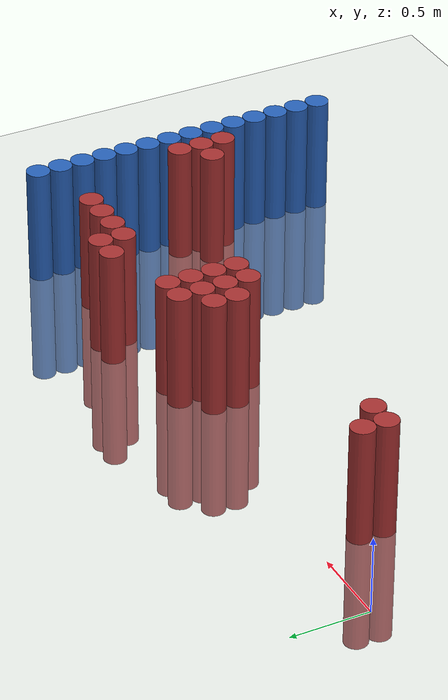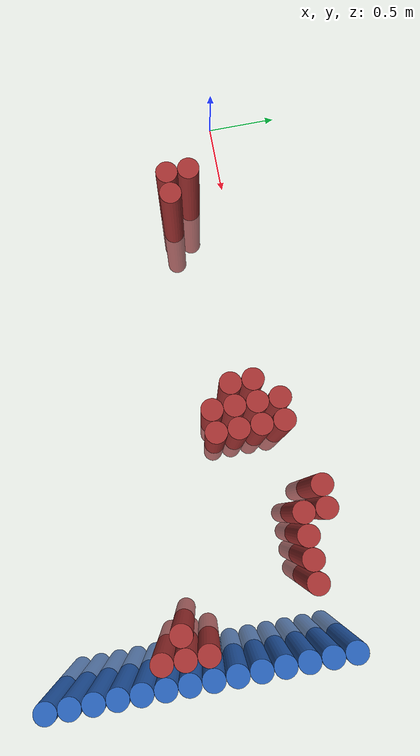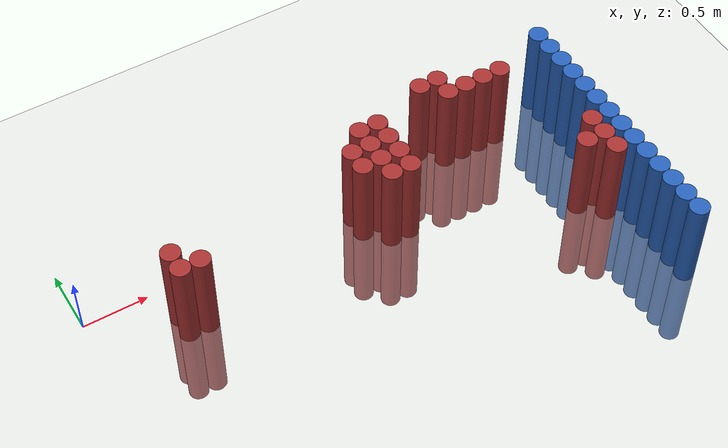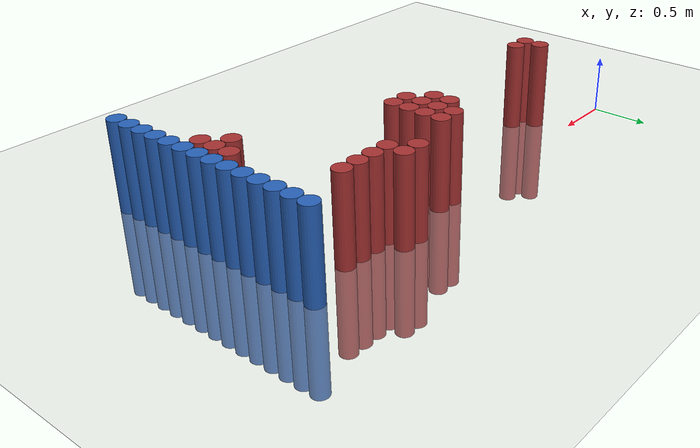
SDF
<sdf version="1.6">
 <world name="default">
  <model name="ground_plane">
   <static>1</static>
   <link name="link">
    <collision name="collision">
     <geometry><plane><normal>0 0 1</normal><size>100 100</size></plane></geometry>
     <surface><friction><ode><mu>100</mu><mu2>50</mu2></ode></friction></surface>
    </collision>
    <visual name="visual">
     <cast_shadows>0</cast_shadows>
     <geometry><plane><normal>0 0 1</normal><size>100 100</size></plane></geometry>
     <material>
      <script><uri>file://media/materials/scripts/gazebo.material</uri><name>Gazebo/Grey</name></script>
     </material>
    </visual>
   </link>
  </model>
  <model name="unit_cylinder_90">
   <static>1</static>
   <pose>3.925000 -1.775000 0.000000 0.000000 0.000000 0.000000</pose>
   <link name="link">
    <inertial>
     <mass>1</mass>
     <inertia><ixx>0.145833</ixx><ixy>0</ixy><ixz>0</ixz><iyy>0.145833</iyy><iyz>0</iyz><izz>0.125</izz></inertia>
    </inertial>
    <collision name="collision">
     <geometry><cylinder><radius>0.075000</radius><length>1.5</length></cylinder></geometry>
    </collision>
    <visual name="visual">
     <geometry><cylinder><radius>0.075000</radius><length>1.5</length></cylinder></geometry>
     <material>
      <ambient>0.152000 0.379000 0.720000 1</ambient>
      <diffuse>0.152000 0.379000 0.720000 1</diffuse>
     </material>
     <material>
      <script><name>Gazebo/Grey</name><uri>file://media/materials/scripts/gazebo.material</uri></script>
     </material>
    </visual>
   </link>
  </model>
  <model name="unit_cylinder_92">
   <static>1</static>
   <pose>3.925000 -1.625000 0.000000 0.000000 0.000000 0.000000</pose>
   <link name="link">
    <inertial>
     <mass>1</mass>
     <inertia><ixx>0.145833</ixx><ixy>0</ixy><ixz>0</ixz><iyy>0.145833</iyy><iyz>0</iyz><izz>0.125</izz></inertia>
    </inertial>
    <collision name="collision">
     <geometry><cylinder><radius>0.075000</radius><length>1.5</length></cylinder></geometry>
    </collision>
    <visual name="visual">
     <geometry><cylinder><radius>0.075000</radius><length>1.5</length></cylinder></geometry>
     <material>
      <ambient>0.152000 0.379000 0.720000 1</ambient>
      <diffuse>0.152000 0.379000 0.720000 1</diffuse>
     </material>
     <material>
      <script><name>Gazebo/Grey</name><uri>file://media/materials/scripts/gazebo.material</uri></script>
     </material>
    </visual>
   </link>
  </model>
  <model name="unit_cylinder_94">
   <static>1</static>
   <pose>3.925000 -1.475000 0.000000 0.000000 0.000000 0.000000</pose>
   <link name="link">
    <inertial>
     <mass>1</mass>
     <inertia><ixx>0.145833</ixx><ixy>0</ixy><ixz>0</ixz><iyy>0.145833</iyy><iyz>0</iyz><izz>0.125</izz></inertia>
    </inertial>
    <collision name="collision">
     <geometry><cylinder><radius>0.075000</radius><length>1.5</length></cylinder></geometry>
    </collision>
    <visual name="visual">
     <geometry><cylinder><radius>0.075000</radius><length>1.5</length></cylinder></geometry>
     <material>
      <ambient>0.152000 0.379000 0.720000 1</ambient>
      <diffuse>0.152000 0.379000 0.720000 1</diffuse>
     </material>
     <material>
      <script><name>Gazebo/Grey</name><uri>file://media/materials/scripts/gazebo.material</uri></script>
     </material>
    </visual>
   </link>
  </model>
  <model name="unit_cylinder_96">
   <static>1</static>
   <pose>3.925000 -1.325000 0.000000 0.000000 0.000000 0.000000</pose>
   <link name="link">
    <inertial>
     <mass>1</mass>
     <inertia><ixx>0.145833</ixx><ixy>0</ixy><ixz>0</ixz><iyy>0.145833</iyy><iyz>0</iyz><izz>0.125</izz></inertia>
    </inertial>
    <collision name="collision">
     <geometry><cylinder><radius>0.075000</radius><length>1.5</length></cylinder></geometry>
    </collision>
    <visual name="visual">
     <geometry><cylinder><radius>0.075000</radius><length>1.5</length></cylinder></geometry>
     <material>
      <ambient>0.152000 0.379000 0.720000 1</ambient>
      <diffuse>0.152000 0.379000 0.720000 1</diffuse>
     </material>
     <material>
      <script><name>Gazebo/Grey</name><uri>file://media/materials/scripts/gazebo.material</uri></script>
     </material>
    </visual>
   </link>
  </model>
  <model name="unit_cylinder_98">
   <static>1</static>
   <pose>3.925000 -1.175000 0.000000 0.000000 0.000000 0.000000</pose>
   <link name="link">
    <inertial>
     <mass>1</mass>
     <inertia><ixx>0.145833</ixx><ixy>0</ixy><ixz>0</ixz><iyy>0.145833</iyy><iyz>0</iyz><izz>0.125</izz></inertia>
    </inertial>
    <collision name="collision">
     <geometry><cylinder><radius>0.075000</radius><length>1.5</length></cylinder></geometry>
    </collision>
    <visual name="visual">
     <geometry><cylinder><radius>0.075000</radius><length>1.5</length></cylinder></geometry>
     <material>
      <ambient>0.152000 0.379000 0.720000 1</ambient>
      <diffuse>0.152000 0.379000 0.720000 1</diffuse>
     </material>
     <material>
      <script><name>Gazebo/Grey</name><uri>file://media/materials/scripts/gazebo.material</uri></script>
     </material>
    </visual>
   </link>
  </model>
  <model name="unit_cylinder_100">
   <static>1</static>
   <pose>3.925000 -1.025000 0.000000 0.000000 0.000000 0.000000</pose>
   <link name="link">
    <inertial>
     <mass>1</mass>
     <inertia><ixx>0.145833</ixx><ixy>0</ixy><ixz>0</ixz><iyy>0.145833</iyy><iyz>0</iyz><izz>0.125</izz></inertia>
    </inertial>
    <collision name="collision">
     <geometry><cylinder><radius>0.075000</radius><length>1.5</length></cylinder></geometry>
    </collision>
    <visual name="visual">
     <geometry><cylinder><radius>0.075000</radius><length>1.5</length></cylinder></geometry>
     <material>
      <ambient>0.152000 0.379000 0.720000 1</ambient>
      <diffuse>0.152000 0.379000 0.720000 1</diffuse>
     </material>
     <material>
      <script><name>Gazebo/Grey</name><uri>file://media/materials/scripts/gazebo.material</uri></script>
     </material>
    </visual>
   </link>
  </model>
  <model name="unit_cylinder_102">
   <static>1</static>
   <pose>3.925000 -0.875000 0.000000 0.000000 0.000000 0.000000</pose>
   <link name="link">
    <inertial>
     <mass>1</mass>
     <inertia><ixx>0.145833</ixx><ixy>0</ixy><ixz>0</ixz><iyy>0.145833</iyy><iyz>0</iyz><izz>0.125</izz></inertia>
    </inertial>
    <collision name="collision">
     <geometry><cylinder><radius>0.075000</radius><length>1.5</length></cylinder></geometry>
    </collision>
    <visual name="visual">
     <geometry><cylinder><radius>0.075000</radius><length>1.5</length></cylinder></geometry>
     <material>
      <ambient>0.152000 0.379000 0.720000 1</ambient>
      <diffuse>0.152000 0.379000 0.720000 1</diffuse>
     </material>
     <material>
      <script><name>Gazebo/Grey</name><uri>file://media/materials/scripts/gazebo.material</uri></script>
     </material>
    </visual>
   </link>
  </model>
  <model name="unit_cylinder_104">
   <static>1</static>
   <pose>3.925000 -0.725000 0.000000 0.000000 0.000000 0.000000</pose>
   <link name="link">
    <inertial>
     <mass>1</mass>
     <inertia><ixx>0.145833</ixx><ixy>0</ixy><ixz>0</ixz><iyy>0.145833</iyy><iyz>0</iyz><izz>0.125</izz></inertia>
    </inertial>
    <collision name="collision">
     <geometry><cylinder><radius>0.075000</radius><length>1.5</length></cylinder></geometry>
    </collision>
    <visual name="visual">
     <geometry><cylinder><radius>0.075000</radius><length>1.5</length></cylinder></geometry>
     <material>
      <ambient>0.152000 0.379000 0.720000 1</ambient>
      <diffuse>0.152000 0.379000 0.720000 1</diffuse>
     </material>
     <material>
      <script><name>Gazebo/Grey</name><uri>file://media/materials/scripts/gazebo.material</uri></script>
     </material>
    </visual>
   </link>
  </model>
  <model name="unit_cylinder_106">
   <static>1</static>
   <pose>3.925000 -0.575000 0.000000 0.000000 0.000000 0.000000</pose>
   <link name="link">
    <inertial>
     <mass>1</mass>
     <inertia><ixx>0.145833</ixx><ixy>0</ixy><ixz>0</ixz><iyy>0.145833</iyy><iyz>0</iyz><izz>0.125</izz></inertia>
    </inertial>
    <collision name="collision">
     <geometry><cylinder><radius>0.075000</radius><length>1.5</length></cylinder></geometry>
    </collision>
    <visual name="visual">
     <geometry><cylinder><radius>0.075000</radius><length>1.5</length></cylinder></geometry>
     <material>
      <ambient>0.152000 0.379000 0.720000 1</ambient>
      <diffuse>0.152000 0.379000 0.720000 1</diffuse>
     </material>
     <material>
      <script><name>Gazebo/Grey</name><uri>file://media/materials/scripts/gazebo.material</uri></script>
     </material>
    </visual>
   </link>
  </model>
  <model name="unit_cylinder_108">
   <static>1</static>
   <pose>3.925000 -0.425000 0.000000 0.000000 0.000000 0.000000</pose>
   <link name="link">
    <inertial>
     <mass>1</mass>
     <inertia><ixx>0.145833</ixx><ixy>0</ixy><ixz>0</ixz><iyy>0.145833</iyy><iyz>0</iyz><izz>0.125</izz></inertia>
    </inertial>
    <collision name="collision">
     <geometry><cylinder><radius>0.075000</radius><length>1.5</length></cylinder></geometry>
    </collision>
    <visual name="visual">
     <geometry><cylinder><radius>0.075000</radius><length>1.5</length></cylinder></geometry>
     <material>
      <ambient>0.152000 0.379000 0.720000 1</ambient>
      <diffuse>0.152000 0.379000 0.720000 1</diffuse>
     </material>
     <material>
      <script><name>Gazebo/Grey</name><uri>file://media/materials/scripts/gazebo.material</uri></script>
     </material>
    </visual>
   </link>
  </model>
  <model name="unit_cylinder_110">
   <static>1</static>
   <pose>3.925000 -0.275000 0.000000 0.000000 0.000000 0.000000</pose>
   <link name="link">
    <inertial>
     <mass>1</mass>
     <inertia><ixx>0.145833</ixx><ixy>0</ixy><ixz>0</ixz><iyy>0.145833</iyy><iyz>0</iyz><izz>0.125</izz></inertia>
    </inertial>
    <collision name="collision">
     <geometry><cylinder><radius>0.075000</radius><length>1.5</length></cylinder></geometry>
    </collision>
    <visual name="visual">
     <geometry><cylinder><radius>0.075000</radius><length>1.5</length></cylinder></geometry>
     <material>
      <ambient>0.152000 0.379000 0.720000 1</ambient>
      <diffuse>0.152000 0.379000 0.720000 1</diffuse>
     </material>
     <material>
      <script><name>Gazebo/Grey</name><uri>file://media/materials/scripts/gazebo.material</uri></script>
     </material>
    </visual>
   </link>
  </model>
  <model name="unit_cylinder_112">
   <static>1</static>
   <pose>3.925000 -0.125000 0.000000 0.000000 0.000000 0.000000</pose>
   <link name="link">
    <inertial>
     <mass>1</mass>
     <inertia><ixx>0.145833</ixx><ixy>0</ixy><ixz>0</ixz><iyy>0.145833</iyy><iyz>0</iyz><izz>0.125</izz></inertia>
    </inertial>
    <collision name="collision">
     <geometry><cylinder><radius>0.075000</radius><length>1.5</length></cylinder></geometry>
    </collision>
    <visual name="visual">
     <geometry><cylinder><radius>0.075000</radius><length>1.5</length></cylinder></geometry>
     <material>
      <ambient>0.152000 0.379000 0.720000 1</ambient>
      <diffuse>0.152000 0.379000 0.720000 1</diffuse>
     </material>
     <material>
      <script><name>Gazebo/Grey</name><uri>file://media/materials/scripts/gazebo.material</uri></script>
     </material>
    </visual>
   </link>
  </model>
  <model name="unit_cylinder_114">
   <static>1</static>
   <pose>3.925000 0.025000 0.000000 0.000000 0.000000 0.000000</pose>
   <link name="link">
    <inertial>
     <mass>1</mass>
     <inertia><ixx>0.145833</ixx><ixy>0</ixy><ixz>0</ixz><iyy>0.145833</iyy><iyz>0</iyz><izz>0.125</izz></inertia>
    </inertial>
    <collision name="collision">
     <geometry><cylinder><radius>0.075000</radius><length>1.5</length></cylinder></geometry>
    </collision>
    <visual name="visual">
     <geometry><cylinder><radius>0.075000</radius><length>1.5</length></cylinder></geometry>
     <material>
      <ambient>0.152000 0.379000 0.720000 1</ambient>
      <diffuse>0.152000 0.379000 0.720000 1</diffuse>
     </material>
     <material>
      <script><name>Gazebo/Grey</name><uri>file://media/materials/scripts/gazebo.material</uri></script>
     </material>
    </visual>
   </link>
  </model>
  <model name="unit_cylinder_116">
   <static>1</static>
   <pose>3.925000 0.175000 0.000000 0.000000 0.000000 0.000000</pose>
   <link name="link">
    <inertial>
     <mass>1</mass>
     <inertia><ixx>0.145833</ixx><ixy>0</ixy><ixz>0</ixz><iyy>0.145833</iyy><iyz>0</iyz><izz>0.125</izz></inertia>
    </inertial>
    <collision name="collision">
     <geometry><cylinder><radius>0.075000</radius><length>1.5</length></cylinder></geometry>
    </collision>
    <visual name="visual">
     <geometry><cylinder><radius>0.075000</radius><length>1.5</length></cylinder></geometry>
     <material>
      <ambient>0.152000 0.379000 0.720000 1</ambient>
      <diffuse>0.152000 0.379000 0.720000 1</diffuse>
     </material>
     <material>
      <script><name>Gazebo/Grey</name><uri>file://media/materials/scripts/gazebo.material</uri></script>
     </material>
    </visual>
   </link>
  </model>
  <model name="unit_cylinder_323">
   <static>1</static>
   <pose>0.625000 -0.425000 0.000000 0.000000 0.000000 0.000000</pose>
   <link name="link">
    <inertial>
     <mass>1</mass>
     <inertia><ixx>0.145833</ixx><ixy>0</ixy><ixz>0</ixz><iyy>0.145833</iyy><iyz>0</iyz><izz>0.125</izz></inertia>
    </inertial>
    <collision name="collision">
     <geometry><cylinder><radius>0.075000</radius><length>1.5</length></cylinder></geometry>
    </collision>
    <visual name="visual">
     <geometry><cylinder><radius>0.075000</radius><length>1.5</length></cylinder></geometry>
     <material>
      <ambient>0.648000 0.192000 0.192000 1</ambient>
      <diffuse>0.648000 0.192000 0.192000 1</diffuse>
     </material>
     <material>
      <script><name>Gazebo/Grey</name><uri>file://media/materials/scripts/gazebo.material</uri></script>
     </material>
    </visual>
   </link>
  </model>
  <model name="unit_cylinder_324">
   <static>1</static>
   <pose>0.625000 -0.275000 0.000000 0.000000 0.000000 0.000000</pose>
   <link name="link">
    <inertial>
     <mass>1</mass>
     <inertia><ixx>0.145833</ixx><ixy>0</ixy><ixz>0</ixz><iyy>0.145833</iyy><iyz>0</iyz><izz>0.125</izz></inertia>
    </inertial>
    <collision name="collision">
     <geometry><cylinder><radius>0.075000</radius><length>1.5</length></cylinder></geometry>
    </collision>
    <visual name="visual">
     <geometry><cylinder><radius>0.075000</radius><length>1.5</length></cylinder></geometry>
     <material>
      <ambient>0.648000 0.192000 0.192000 1</ambient>
      <diffuse>0.648000 0.192000 0.192000 1</diffuse>
     </material>
     <material>
      <script><name>Gazebo/Grey</name><uri>file://media/materials/scripts/gazebo.material</uri></script>
     </material>
    </visual>
   </link>
  </model>
  <model name="unit_cylinder_326">
   <static>1</static>
   <pose>0.775000 -0.425000 0.000000 0.000000 0.000000 0.000000</pose>
   <link name="link">
    <inertial>
     <mass>1</mass>
     <inertia><ixx>0.145833</ixx><ixy>0</ixy><ixz>0</ixz><iyy>0.145833</iyy><iyz>0</iyz><izz>0.125</izz></inertia>
    </inertial>
    <collision name="collision">
     <geometry><cylinder><radius>0.075000</radius><length>1.5</length></cylinder></geometry>
    </collision>
    <visual name="visual">
     <geometry><cylinder><radius>0.075000</radius><length>1.5</length></cylinder></geometry>
     <material>
      <ambient>0.648000 0.192000 0.192000 1</ambient>
      <diffuse>0.648000 0.192000 0.192000 1</diffuse>
     </material>
     <material>
      <script><name>Gazebo/Grey</name><uri>file://media/materials/scripts/gazebo.material</uri></script>
     </material>
    </visual>
   </link>
  </model>
  <model name="unit_cylinder_333">
   <static>1</static>
   <pose>2.125000 -0.275000 0.000000 0.000000 0.000000 0.000000</pose>
   <link name="link">
    <inertial>
     <mass>1</mass>
     <inertia><ixx>0.145833</ixx><ixy>0</ixy><ixz>0</ixz><iyy>0.145833</iyy><iyz>0</iyz><izz>0.125</izz></inertia>
    </inertial>
    <collision name="collision">
     <geometry><cylinder><radius>0.075000</radius><length>1.5</length></cylinder></geometry>
    </collision>
    <visual name="visual">
     <geometry><cylinder><radius>0.075000</radius><length>1.5</length></cylinder></geometry>
     <material>
      <ambient>0.648000 0.192000 0.192000 1</ambient>
      <diffuse>0.648000 0.192000 0.192000 1</diffuse>
     </material>
     <material>
      <script><name>Gazebo/Grey</name><uri>file://media/materials/scripts/gazebo.material</uri></script>
     </material>
    </visual>
   </link>
  </model>
  <model name="unit_cylinder_334">
   <static>1</static>
   <pose>2.125000 -0.125000 0.000000 0.000000 0.000000 0.000000</pose>
   <link name="link">
    <inertial>
     <mass>1</mass>
     <inertia><ixx>0.145833</ixx><ixy>0</ixy><ixz>0</ixz><iyy>0.145833</iyy><iyz>0</iyz><izz>0.125</izz></inertia>
    </inertial>
    <collision name="collision">
     <geometry><cylinder><radius>0.075000</radius><length>1.5</length></cylinder></geometry>
    </collision>
    <visual name="visual">
     <geometry><cylinder><radius>0.075000</radius><length>1.5</length></cylinder></geometry>
     <material>
      <ambient>0.648000 0.192000 0.192000 1</ambient>
      <diffuse>0.648000 0.192000 0.192000 1</diffuse>
     </material>
     <material>
      <script><name>Gazebo/Grey</name><uri>file://media/materials/scripts/gazebo.material</uri></script>
     </material>
    </visual>
   </link>
  </model>
  <model name="unit_cylinder_340">
   <static>1</static>
   <pose>2.275000 -0.425000 0.000000 0.000000 0.000000 0.000000</pose>
   <link name="link">
    <inertial>
     <mass>1</mass>
     <inertia><ixx>0.145833</ixx><ixy>0</ixy><ixz>0</ixz><iyy>0.145833</iyy><iyz>0</iyz><izz>0.125</izz></inertia>
    </inertial>
    <collision name="collision">
     <geometry><cylinder><radius>0.075000</radius><length>1.5</length></cylinder></geometry>
    </collision>
    <visual name="visual">
     <geometry><cylinder><radius>0.075000</radius><length>1.5</length></cylinder></geometry>
     <material>
      <ambient>0.648000 0.192000 0.192000 1</ambient>
      <diffuse>0.648000 0.192000 0.192000 1</diffuse>
     </material>
     <material>
      <script><name>Gazebo/Grey</name><uri>file://media/materials/scripts/gazebo.material</uri></script>
     </material>
    </visual>
   </link>
  </model>
  <model name="unit_cylinder_341">
   <static>1</static>
   <pose>2.275000 -0.275000 0.000000 0.000000 0.000000 0.000000</pose>
   <link name="link">
    <inertial>
     <mass>1</mass>
     <inertia><ixx>0.145833</ixx><ixy>0</ixy><ixz>0</ixz><iyy>0.145833</iyy><iyz>0</iyz><izz>0.125</izz></inertia>
    </inertial>
    <collision name="collision">
     <geometry><cylinder><radius>0.075000</radius><length>1.5</length></cylinder></geometry>
    </collision>
    <visual name="visual">
     <geometry><cylinder><radius>0.075000</radius><length>1.5</length></cylinder></geometry>
     <material>
      <ambient>0.648000 0.192000 0.192000 1</ambient>
      <diffuse>0.648000 0.192000 0.192000 1</diffuse>
     </material>
     <material>
      <script><name>Gazebo/Grey</name><uri>file://media/materials/scripts/gazebo.material</uri></script>
     </material>
    </visual>
   </link>
  </model>
  <model name="unit_cylinder_342">
   <static>1</static>
   <pose>2.275000 -0.125000 0.000000 0.000000 0.000000 0.000000</pose>
   <link name="link">
    <inertial>
     <mass>1</mass>
     <inertia><ixx>0.145833</ixx><ixy>0</ixy><ixz>0</ixz><iyy>0.145833</iyy><iyz>0</iyz><izz>0.125</izz></inertia>
    </inertial>
    <collision name="collision">
     <geometry><cylinder><radius>0.075000</radius><length>1.5</length></cylinder></geometry>
    </collision>
    <visual name="visual">
     <geometry><cylinder><radius>0.075000</radius><length>1.5</length></cylinder></geometry>
     <material>
      <ambient>0.648000 0.192000 0.192000 1</ambient>
      <diffuse>0.648000 0.192000 0.192000 1</diffuse>
     </material>
     <material>
      <script><name>Gazebo/Grey</name><uri>file://media/materials/scripts/gazebo.material</uri></script>
     </material>
    </visual>
   </link>
  </model>
  <model name="unit_cylinder_343">
   <static>1</static>
   <pose>2.275000 0.025000 0.000000 0.000000 0.000000 0.000000</pose>
   <link name="link">
    <inertial>
     <mass>1</mass>
     <inertia><ixx>0.145833</ixx><ixy>0</ixy><ixz>0</ixz><iyy>0.145833</iyy><iyz>0</iyz><izz>0.125</izz></inertia>
    </inertial>
    <collision name="collision">
     <geometry><cylinder><radius>0.075000</radius><length>1.5</length></cylinder></geometry>
    </collision>
    <visual name="visual">
     <geometry><cylinder><radius>0.075000</radius><length>1.5</length></cylinder></geometry>
     <material>
      <ambient>0.648000 0.192000 0.192000 1</ambient>
      <diffuse>0.648000 0.192000 0.192000 1</diffuse>
     </material>
     <material>
      <script><name>Gazebo/Grey</name><uri>file://media/materials/scripts/gazebo.material</uri></script>
     </material>
    </visual>
   </link>
  </model>
  <model name="unit_cylinder_349">
   <static>1</static>
   <pose>2.425000 -0.425000 0.000000 0.000000 0.000000 0.000000</pose>
   <link name="link">
    <inertial>
     <mass>1</mass>
     <inertia><ixx>0.145833</ixx><ixy>0</ixy><ixz>0</ixz><iyy>0.145833</iyy><iyz>0</iyz><izz>0.125</izz></inertia>
    </inertial>
    <collision name="collision">
     <geometry><cylinder><radius>0.075000</radius><length>1.5</length></cylinder></geometry>
    </collision>
    <visual name="visual">
     <geometry><cylinder><radius>0.075000</radius><length>1.5</length></cylinder></geometry>
     <material>
      <ambient>0.648000 0.192000 0.192000 1</ambient>
      <diffuse>0.648000 0.192000 0.192000 1</diffuse>
     </material>
     <material>
      <script><name>Gazebo/Grey</name><uri>file://media/materials/scripts/gazebo.material</uri></script>
     </material>
    </visual>
   </link>
  </model>
  <model name="unit_cylinder_350">
   <static>1</static>
   <pose>2.425000 -0.275000 0.000000 0.000000 0.000000 0.000000</pose>
   <link name="link">
    <inertial>
     <mass>1</mass>
     <inertia><ixx>0.145833</ixx><ixy>0</ixy><ixz>0</ixz><iyy>0.145833</iyy><iyz>0</iyz><izz>0.125</izz></inertia>
    </inertial>
    <collision name="collision">
     <geometry><cylinder><radius>0.075000</radius><length>1.5</length></cylinder></geometry>
    </collision>
    <visual name="visual">
     <geometry><cylinder><radius>0.075000</radius><length>1.5</length></cylinder></geometry>
     <material>
      <ambient>0.648000 0.192000 0.192000 1</ambient>
      <diffuse>0.648000 0.192000 0.192000 1</diffuse>
     </material>
     <material>
      <script><name>Gazebo/Grey</name><uri>file://media/materials/scripts/gazebo.material</uri></script>
     </material>
    </visual>
   </link>
  </model>
  <model name="unit_cylinder_351">
   <static>1</static>
   <pose>2.425000 -0.125000 0.000000 0.000000 0.000000 0.000000</pose>
   <link name="link">
    <inertial>
     <mass>1</mass>
     <inertia><ixx>0.145833</ixx><ixy>0</ixy><ixz>0</ixz><iyy>0.145833</iyy><iyz>0</iyz><izz>0.125</izz></inertia>
    </inertial>
    <collision name="collision">
     <geometry><cylinder><radius>0.075000</radius><length>1.5</length></cylinder></geometry>
    </collision>
    <visual name="visual">
     <geometry><cylinder><radius>0.075000</radius><length>1.5</length></cylinder></geometry>
     <material>
      <ambient>0.648000 0.192000 0.192000 1</ambient>
      <diffuse>0.648000 0.192000 0.192000 1</diffuse>
     </material>
     <material>
      <script><name>Gazebo/Grey</name><uri>file://media/materials/scripts/gazebo.material</uri></script>
     </material>
    </visual>
   </link>
  </model>
  <model name="unit_cylinder_352">
   <static>1</static>
   <pose>2.425000 0.025000 0.000000 0.000000 0.000000 0.000000</pose>
   <link name="link">
    <inertial>
     <mass>1</mass>
     <inertia><ixx>0.145833</ixx><ixy>0</ixy><ixz>0</ixz><iyy>0.145833</iyy><iyz>0</iyz><izz>0.125</izz></inertia>
    </inertial>
    <collision name="collision">
     <geometry><cylinder><radius>0.075000</radius><length>1.5</length></cylinder></geometry>
    </collision>
    <visual name="visual">
     <geometry><cylinder><radius>0.075000</radius><length>1.5</length></cylinder></geometry>
     <material>
      <ambient>0.648000 0.192000 0.192000 1</ambient>
      <diffuse>0.648000 0.192000 0.192000 1</diffuse>
     </material>
     <material>
      <script><name>Gazebo/Grey</name><uri>file://media/materials/scripts/gazebo.material</uri></script>
     </material>
    </visual>
   </link>
  </model>
  <model name="unit_cylinder_364">
   <static>1</static>
   <pose>2.875000 0.175000 0.000000 0.000000 0.000000 0.000000</pose>
   <link name="link">
    <inertial>
     <mass>1</mass>
     <inertia><ixx>0.145833</ixx><ixy>0</ixy><ixz>0</ixz><iyy>0.145833</iyy><iyz>0</iyz><izz>0.125</izz></inertia>
    </inertial>
    <collision name="collision">
     <geometry><cylinder><radius>0.075000</radius><length>1.5</length></cylinder></geometry>
    </collision>
    <visual name="visual">
     <geometry><cylinder><radius>0.075000</radius><length>1.5</length></cylinder></geometry>
     <material>
      <ambient>0.648000 0.192000 0.192000 1</ambient>
      <diffuse>0.648000 0.192000 0.192000 1</diffuse>
     </material>
     <material>
      <script><name>Gazebo/Grey</name><uri>file://media/materials/scripts/gazebo.material</uri></script>
     </material>
    </visual>
   </link>
  </model>
  <model name="unit_cylinder_367">
   <static>1</static>
   <pose>3.025000 0.025000 0.000000 0.000000 0.000000 0.000000</pose>
   <link name="link">
    <inertial>
     <mass>1</mass>
     <inertia><ixx>0.145833</ixx><ixy>0</ixy><ixz>0</ixz><iyy>0.145833</iyy><iyz>0</iyz><izz>0.125</izz></inertia>
    </inertial>
    <collision name="collision">
     <geometry><cylinder><radius>0.075000</radius><length>1.5</length></cylinder></geometry>
    </collision>
    <visual name="visual">
     <geometry><cylinder><radius>0.075000</radius><length>1.5</length></cylinder></geometry>
     <material>
      <ambient>0.648000 0.192000 0.192000 1</ambient>
      <diffuse>0.648000 0.192000 0.192000 1</diffuse>
     </material>
     <material>
      <script><name>Gazebo/Grey</name><uri>file://media/materials/scripts/gazebo.material</uri></script>
     </material>
    </visual>
   </link>
  </model>
  <model name="unit_cylinder_368">
   <static>1</static>
   <pose>3.025000 0.175000 0.000000 0.000000 0.000000 0.000000</pose>
   <link name="link">
    <inertial>
     <mass>1</mass>
     <inertia><ixx>0.145833</ixx><ixy>0</ixy><ixz>0</ixz><iyy>0.145833</iyy><iyz>0</iyz><izz>0.125</izz></inertia>
    </inertial>
    <collision name="collision">
     <geometry><cylinder><radius>0.075000</radius><length>1.5</length></cylinder></geometry>
    </collision>
    <visual name="visual">
     <geometry><cylinder><radius>0.075000</radius><length>1.5</length></cylinder></geometry>
     <material>
      <ambient>0.648000 0.192000 0.192000 1</ambient>
      <diffuse>0.648000 0.192000 0.192000 1</diffuse>
     </material>
     <material>
      <script><name>Gazebo/Grey</name><uri>file://media/materials/scripts/gazebo.material</uri></script>
     </material>
    </visual>
   </link>
  </model>
  <model name="unit_cylinder_371">
   <static>1</static>
   <pose>3.175000 0.025000 0.000000 0.000000 0.000000 0.000000</pose>
   <link name="link">
    <inertial>
     <mass>1</mass>
     <inertia><ixx>0.145833</ixx><ixy>0</ixy><ixz>0</ixz><iyy>0.145833</iyy><iyz>0</iyz><izz>0.125</izz></inertia>
    </inertial>
    <collision name="collision">
     <geometry><cylinder><radius>0.075000</radius><length>1.5</length></cylinder></geometry>
    </collision>
    <visual name="visual">
     <geometry><cylinder><radius>0.075000</radius><length>1.5</length></cylinder></geometry>
     <material>
      <ambient>0.648000 0.192000 0.192000 1</ambient>
      <diffuse>0.648000 0.192000 0.192000 1</diffuse>
     </material>
     <material>
      <script><name>Gazebo/Grey</name><uri>file://media/materials/scripts/gazebo.material</uri></script>
     </material>
    </visual>
   </link>
  </model>
  <model name="unit_cylinder_377">
   <static>1</static>
   <pose>3.325000 0.025000 0.000000 0.000000 0.000000 0.000000</pose>
   <link name="link">
    <inertial>
     <mass>1</mass>
     <inertia><ixx>0.145833</ixx><ixy>0</ixy><ixz>0</ixz><iyy>0.145833</iyy><iyz>0</iyz><izz>0.125</izz></inertia>
    </inertial>
    <collision name="collision">
     <geometry><cylinder><radius>0.075000</radius><length>1.5</length></cylinder></geometry>
    </collision>
    <visual name="visual">
     <geometry><cylinder><radius>0.075000</radius><length>1.5</length></cylinder></geometry>
     <material>
      <ambient>0.648000 0.192000 0.192000 1</ambient>
      <diffuse>0.648000 0.192000 0.192000 1</diffuse>
     </material>
     <material>
      <script><name>Gazebo/Grey</name><uri>file://media/materials/scripts/gazebo.material</uri></script>
     </material>
    </visual>
   </link>
  </model>
  <model name="unit_cylinder_382">
   <static>1</static>
   <pose>3.475000 0.025000 0.000000 0.000000 0.000000 0.000000</pose>
   <link name="link">
    <inertial>
     <mass>1</mass>
     <inertia><ixx>0.145833</ixx><ixy>0</ixy><ixz>0</ixz><iyy>0.145833</iyy><iyz>0</iyz><izz>0.125</izz></inertia>
    </inertial>
    <collision name="collision">
     <geometry><cylinder><radius>0.075000</radius><length>1.5</length></cylinder></geometry>
    </collision>
    <visual name="visual">
     <geometry><cylinder><radius>0.075000</radius><length>1.5</length></cylinder></geometry>
     <material>
      <ambient>0.648000 0.192000 0.192000 1</ambient>
      <diffuse>0.648000 0.192000 0.192000 1</diffuse>
     </material>
     <material>
      <script><name>Gazebo/Grey</name><uri>file://media/materials/scripts/gazebo.material</uri></script>
     </material>
    </visual>
   </link>
  </model>
  <model name="unit_cylinder_384">
   <static>1</static>
   <pose>3.625000 -0.875000 0.000000 0.000000 0.000000 0.000000</pose>
   <link name="link">
    <inertial>
     <mass>1</mass>
     <inertia><ixx>0.145833</ixx><ixy>0</ixy><ixz>0</ixz><iyy>0.145833</iyy><iyz>0</iyz><izz>0.125</izz></inertia>
    </inertial>
    <collision name="collision">
     <geometry><cylinder><radius>0.075000</radius><length>1.5</length></cylinder></geometry>
    </collision>
    <visual name="visual">
     <geometry><cylinder><radius>0.075000</radius><length>1.5</length></cylinder></geometry>
     <material>
      <ambient>0.648000 0.192000 0.192000 1</ambient>
      <diffuse>0.648000 0.192000 0.192000 1</diffuse>
     </material>
     <material>
      <script><name>Gazebo/Grey</name><uri>file://media/materials/scripts/gazebo.material</uri></script>
     </material>
    </visual>
   </link>
  </model>
  <model name="unit_cylinder_386">
   <static>1</static>
   <pose>3.775000 -1.025000 0.000000 0.000000 0.000000 0.000000</pose>
   <link name="link">
    <inertial>
     <mass>1</mass>
     <inertia><ixx>0.145833</ixx><ixy>0</ixy><ixz>0</ixz><iyy>0.145833</iyy><iyz>0</iyz><izz>0.125</izz></inertia>
    </inertial>
    <collision name="collision">
     <geometry><cylinder><radius>0.075000</radius><length>1.5</length></cylinder></geometry>
    </collision>
    <visual name="visual">
     <geometry><cylinder><radius>0.075000</radius><length>1.5</length></cylinder></geometry>
     <material>
      <ambient>0.648000 0.192000 0.192000 1</ambient>
      <diffuse>0.648000 0.192000 0.192000 1</diffuse>
     </material>
     <material>
      <script><name>Gazebo/Grey</name><uri>file://media/materials/scripts/gazebo.material</uri></script>
     </material>
    </visual>
   </link>
  </model>
  <model name="unit_cylinder_387">
   <static>1</static>
   <pose>3.775000 -0.875000 0.000000 0.000000 0.000000 0.000000</pose>
   <link name="link">
    <inertial>
     <mass>1</mass>
     <inertia><ixx>0.145833</ixx><ixy>0</ixy><ixz>0</ixz><iyy>0.145833</iyy><iyz>0</iyz><izz>0.125</izz></inertia>
    </inertial>
    <collision name="collision">
     <geometry><cylinder><radius>0.075000</radius><length>1.5</length></cylinder></geometry>
    </collision>
    <visual name="visual">
     <geometry><cylinder><radius>0.075000</radius><length>1.5</length></cylinder></geometry>
     <material>
      <ambient>0.648000 0.192000 0.192000 1</ambient>
      <diffuse>0.648000 0.192000 0.192000 1</diffuse>
     </material>
     <material>
      <script><name>Gazebo/Grey</name><uri>file://media/materials/scripts/gazebo.material</uri></script>
     </material>
    </visual>
   </link>
  </model>
  <model name="unit_cylinder_388">
   <static>1</static>
   <pose>3.775000 -0.725000 0.000000 0.000000 0.000000 0.000000</pose>
   <link name="link">
    <inertial>
     <mass>1</mass>
     <inertia><ixx>0.145833</ixx><ixy>0</ixy><ixz>0</ixz><iyy>0.145833</iyy><iyz>0</iyz><izz>0.125</izz></inertia>
    </inertial>
    <collision name="collision">
     <geometry><cylinder><radius>0.075000</radius><length>1.5</length></cylinder></geometry>
    </collision>
    <visual name="visual">
     <geometry><cylinder><radius>0.075000</radius><length>1.5</length></cylinder></geometry>
     <material>
      <ambient>0.648000 0.192000 0.192000 1</ambient>
      <diffuse>0.648000 0.192000 0.192000 1</diffuse>
     </material>
     <material>
      <script><name>Gazebo/Grey</name><uri>file://media/materials/scripts/gazebo.material</uri></script>
     </material>
    </visual>
   </link>
  </model>
  <model name="unit_cylinder_399">
   <static>1</static>
   <pose>3.925000 -1.775000 0.000000 0.000000 0.000000 0.000000</pose>
   <link name="link">
    <inertial>
     <mass>1</mass>
     <inertia><ixx>0.145833</ixx><ixy>0</ixy><ixz>0</ixz><iyy>0.145833</iyy><iyz>0</iyz><izz>0.125</izz></inertia>
    </inertial>
    <collision name="collision">
     <geometry><cylinder><radius>0.075000</radius><length>1.5</length></cylinder></geometry>
    </collision>
    <visual name="visual">
     <geometry><cylinder><radius>0.075000</radius><length>1.5</length></cylinder></geometry>
     <material>
      <ambient>0.152000 0.379000 0.720000 1</ambient>
      <diffuse>0.152000 0.379000 0.720000 1</diffuse>
     </material>
     <material>
      <script><name>Gazebo/Grey</name><uri>file://media/materials/scripts/gazebo.material</uri></script>
     </material>
    </visual>
   </link>
  </model>
  <model name="unit_cylinder_400">
   <static>1</static>
   <pose>3.925000 -1.625000 0.000000 0.000000 0.000000 0.000000</pose>
   <link name="link">
    <inertial>
     <mass>1</mass>
     <inertia><ixx>0.145833</ixx><ixy>0</ixy><ixz>0</ixz><iyy>0.145833</iyy><iyz>0</iyz><izz>0.125</izz></inertia>
    </inertial>
    <collision name="collision">
     <geometry><cylinder><radius>0.075000</radius><length>1.5</length></cylinder></geometry>
    </collision>
    <visual name="visual">
     <geometry><cylinder><radius>0.075000</radius><length>1.5</length></cylinder></geometry>
     <material>
      <ambient>0.152000 0.379000 0.720000 1</ambient>
      <diffuse>0.152000 0.379000 0.720000 1</diffuse>
     </material>
     <material>
      <script><name>Gazebo/Grey</name><uri>file://media/materials/scripts/gazebo.material</uri></script>
     </material>
    </visual>
   </link>
  </model>
  <model name="unit_cylinder_401">
   <static>1</static>
   <pose>3.925000 -1.475000 0.000000 0.000000 0.000000 0.000000</pose>
   <link name="link">
    <inertial>
     <mass>1</mass>
     <inertia><ixx>0.145833</ixx><ixy>0</ixy><ixz>0</ixz><iyy>0.145833</iyy><iyz>0</iyz><izz>0.125</izz></inertia>
    </inertial>
    <collision name="collision">
     <geometry><cylinder><radius>0.075000</radius><length>1.5</length></cylinder></geometry>
    </collision>
    <visual name="visual">
     <geometry><cylinder><radius>0.075000</radius><length>1.5</length></cylinder></geometry>
     <material>
      <ambient>0.152000 0.379000 0.720000 1</ambient>
      <diffuse>0.152000 0.379000 0.720000 1</diffuse>
     </material>
     <material>
      <script><name>Gazebo/Grey</name><uri>file://media/materials/scripts/gazebo.material</uri></script>
     </material>
    </visual>
   </link>
  </model>
  <model name="unit_cylinder_402">
   <static>1</static>
   <pose>3.925000 -1.325000 0.000000 0.000000 0.000000 0.000000</pose>
   <link name="link">
    <inertial>
     <mass>1</mass>
     <inertia><ixx>0.145833</ixx><ixy>0</ixy><ixz>0</ixz><iyy>0.145833</iyy><iyz>0</iyz><izz>0.125</izz></inertia>
    </inertial>
    <collision name="collision">
     <geometry><cylinder><radius>0.075000</radius><length>1.5</length></cylinder></geometry>
    </collision>
    <visual name="visual">
     <geometry><cylinder><radius>0.075000</radius><length>1.5</length></cylinder></geometry>
     <material>
      <ambient>0.152000 0.379000 0.720000 1</ambient>
      <diffuse>0.152000 0.379000 0.720000 1</diffuse>
     </material>
     <material>
      <script><name>Gazebo/Grey</name><uri>file://media/materials/scripts/gazebo.material</uri></script>
     </material>
    </visual>
   </link>
  </model>
  <model name="unit_cylinder_403">
   <static>1</static>
   <pose>3.925000 -1.175000 0.000000 0.000000 0.000000 0.000000</pose>
   <link name="link">
    <inertial>
     <mass>1</mass>
     <inertia><ixx>0.145833</ixx><ixy>0</ixy><ixz>0</ixz><iyy>0.145833</iyy><iyz>0</iyz><izz>0.125</izz></inertia>
    </inertial>
    <collision name="collision">
     <geometry><cylinder><radius>0.075000</radius><length>1.5</length></cylinder></geometry>
    </collision>
    <visual name="visual">
     <geometry><cylinder><radius>0.075000</radius><length>1.5</length></cylinder></geometry>
     <material>
      <ambient>0.152000 0.379000 0.720000 1</ambient>
      <diffuse>0.152000 0.379000 0.720000 1</diffuse>
     </material>
     <material>
      <script><name>Gazebo/Grey</name><uri>file://media/materials/scripts/gazebo.material</uri></script>
     </material>
    </visual>
   </link>
  </model>
  <model name="unit_cylinder_404">
   <static>1</static>
   <pose>3.925000 -1.025000 0.000000 0.000000 0.000000 0.000000</pose>
   <link name="link">
    <inertial>
     <mass>1</mass>
     <inertia><ixx>0.145833</ixx><ixy>0</ixy><ixz>0</ixz><iyy>0.145833</iyy><iyz>0</iyz><izz>0.125</izz></inertia>
    </inertial>
    <collision name="collision">
     <geometry><cylinder><radius>0.075000</radius><length>1.5</length></cylinder></geometry>
    </collision>
    <visual name="visual">
     <geometry><cylinder><radius>0.075000</radius><length>1.5</length></cylinder></geometry>
     <material>
      <ambient>0.152000 0.379000 0.720000 1</ambient>
      <diffuse>0.152000 0.379000 0.720000 1</diffuse>
     </material>
     <material>
      <script><name>Gazebo/Grey</name><uri>file://media/materials/scripts/gazebo.material</uri></script>
     </material>
    </visual>
   </link>
  </model>
  <model name="unit_cylinder_405">
   <static>1</static>
   <pose>3.925000 -0.875000 0.000000 0.000000 0.000000 0.000000</pose>
   <link name="link">
    <inertial>
     <mass>1</mass>
     <inertia><ixx>0.145833</ixx><ixy>0</ixy><ixz>0</ixz><iyy>0.145833</iyy><iyz>0</iyz><izz>0.125</izz></inertia>
    </inertial>
    <collision name="collision">
     <geometry><cylinder><radius>0.075000</radius><length>1.5</length></cylinder></geometry>
    </collision>
    <visual name="visual">
     <geometry><cylinder><radius>0.075000</radius><length>1.5</length></cylinder></geometry>
     <material>
      <ambient>0.152000 0.379000 0.720000 1</ambient>
      <diffuse>0.152000 0.379000 0.720000 1</diffuse>
     </material>
     <material>
      <script><name>Gazebo/Grey</name><uri>file://media/materials/scripts/gazebo.material</uri></script>
     </material>
    </visual>
   </link>
  </model>
  <model name="unit_cylinder_406">
   <static>1</static>
   <pose>3.925000 -0.725000 0.000000 0.000000 0.000000 0.000000</pose>
   <link name="link">
    <inertial>
     <mass>1</mass>
     <inertia><ixx>0.145833</ixx><ixy>0</ixy><ixz>0</ixz><iyy>0.145833</iyy><iyz>0</iyz><izz>0.125</izz></inertia>
    </inertial>
    <collision name="collision">
     <geometry><cylinder><radius>0.075000</radius><length>1.5</length></cylinder></geometry>
    </collision>
    <visual name="visual">
     <geometry><cylinder><radius>0.075000</radius><length>1.5</length></cylinder></geometry>
     <material>
      <ambient>0.152000 0.379000 0.720000 1</ambient>
      <diffuse>0.152000 0.379000 0.720000 1</diffuse>
     </material>
     <material>
      <script><name>Gazebo/Grey</name><uri>file://media/materials/scripts/gazebo.material</uri></script>
     </material>
    </visual>
   </link>
  </model>
  <model name="unit_cylinder_407">
   <static>1</static>
   <pose>3.925000 -0.575000 0.000000 0.000000 0.000000 0.000000</pose>
   <link name="link">
    <inertial>
     <mass>1</mass>
     <inertia><ixx>0.145833</ixx><ixy>0</ixy><ixz>0</ixz><iyy>0.145833</iyy><iyz>0</iyz><izz>0.125</izz></inertia>
    </inertial>
    <collision name="collision">
     <geometry><cylinder><radius>0.075000</radius><length>1.5</length></cylinder></geometry>
    </collision>
    <visual name="visual">
     <geometry><cylinder><radius>0.075000</radius><length>1.5</length></cylinder></geometry>
     <material>
      <ambient>0.152000 0.379000 0.720000 1</ambient>
      <diffuse>0.152000 0.379000 0.720000 1</diffuse>
     </material>
     <material>
      <script><name>Gazebo/Grey</name><uri>file://media/materials/scripts/gazebo.material</uri></script>
     </material>
    </visual>
   </link>
  </model>
  <model name="unit_cylinder_408">
   <static>1</static>
   <pose>3.925000 -0.425000 0.000000 0.000000 0.000000 0.000000</pose>
   <link name="link">
    <inertial>
     <mass>1</mass>
     <inertia><ixx>0.145833</ixx><ixy>0</ixy><ixz>0</ixz><iyy>0.145833</iyy><iyz>0</iyz><izz>0.125</izz></inertia>
    </inertial>
    <collision name="collision">
     <geometry><cylinder><radius>0.075000</radius><length>1.5</length></cylinder></geometry>
    </collision>
    <visual name="visual">
     <geometry><cylinder><radius>0.075000</radius><length>1.5</length></cylinder></geometry>
     <material>
      <ambient>0.152000 0.379000 0.720000 1</ambient>
      <diffuse>0.152000 0.379000 0.720000 1</diffuse>
     </material>
     <material>
      <script><name>Gazebo/Grey</name><uri>file://media/materials/scripts/gazebo.material</uri></script>
     </material>
    </visual>
   </link>
  </model>
  <model name="unit_cylinder_409">
   <static>1</static>
   <pose>3.925000 -0.275000 0.000000 0.000000 0.000000 0.000000</pose>
   <link name="link">
    <inertial>
     <mass>1</mass>
     <inertia><ixx>0.145833</ixx><ixy>0</ixy><ixz>0</ixz><iyy>0.145833</iyy><iyz>0</iyz><izz>0.125</izz></inertia>
    </inertial>
    <collision name="collision">
     <geometry><cylinder><radius>0.075000</radius><length>1.5</length></cylinder></geometry>
    </collision>
    <visual name="visual">
     <geometry><cylinder><radius>0.075000</radius><length>1.5</length></cylinder></geometry>
     <material>
      <ambient>0.152000 0.379000 0.720000 1</ambient>
      <diffuse>0.152000 0.379000 0.720000 1</diffuse>
     </material>
     <material>
      <script><name>Gazebo/Grey</name><uri>file://media/materials/scripts/gazebo.material</uri></script>
     </material>
    </visual>
   </link>
  </model>
  <model name="unit_cylinder_410">
   <static>1</static>
   <pose>3.925000 -0.125000 0.000000 0.000000 0.000000 0.000000</pose>
   <link name="link">
    <inertial>
     <mass>1</mass>
     <inertia><ixx>0.145833</ixx><ixy>0</ixy><ixz>0</ixz><iyy>0.145833</iyy><iyz>0</iyz><izz>0.125</izz></inertia>
    </inertial>
    <collision name="collision">
     <geometry><cylinder><radius>0.075000</radius><length>1.5</length></cylinder></geometry>
    </collision>
    <visual name="visual">
     <geometry><cylinder><radius>0.075000</radius><length>1.5</length></cylinder></geometry>
     <material>
      <ambient>0.152000 0.379000 0.720000 1</ambient>
      <diffuse>0.152000 0.379000 0.720000 1</diffuse>
     </material>
     <material>
      <script><name>Gazebo/Grey</name><uri>file://media/materials/scripts/gazebo.material</uri></script>
     </material>
    </visual>
   </link>
  </model>
  <model name="unit_cylinder_411">
   <static>1</static>
   <pose>3.925000 0.025000 0.000000 0.000000 0.000000 0.000000</pose>
   <link name="link">
    <inertial>
     <mass>1</mass>
     <inertia><ixx>0.145833</ixx><ixy>0</ixy><ixz>0</ixz><iyy>0.145833</iyy><iyz>0</iyz><izz>0.125</izz></inertia>
    </inertial>
    <collision name="collision">
     <geometry><cylinder><radius>0.075000</radius><length>1.5</length></cylinder></geometry>
    </collision>
    <visual name="visual">
     <geometry><cylinder><radius>0.075000</radius><length>1.5</length></cylinder></geometry>
     <material>
      <ambient>0.152000 0.379000 0.720000 1</ambient>
      <diffuse>0.152000 0.379000 0.720000 1</diffuse>
     </material>
     <material>
      <script><name>Gazebo/Grey</name><uri>file://media/materials/scripts/gazebo.material</uri></script>
     </material>
    </visual>
   </link>
  </model>
 </world>
</sdf>
